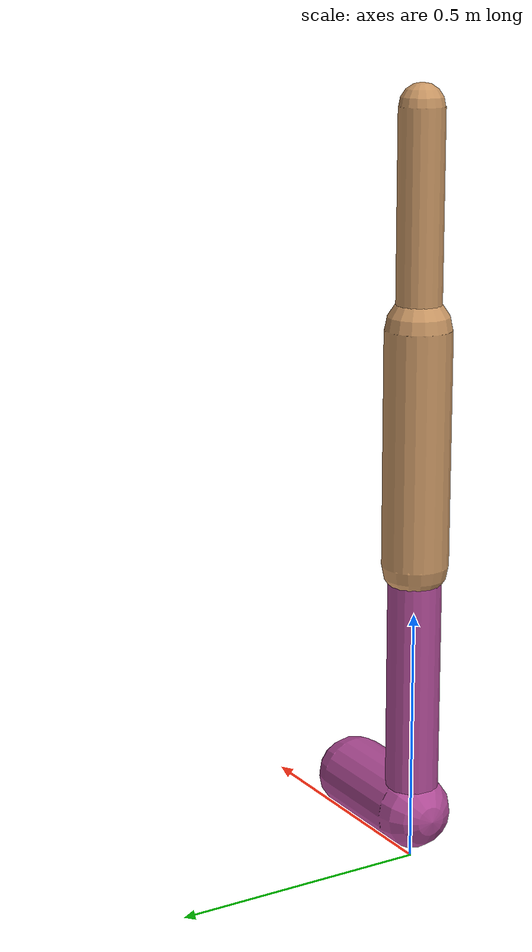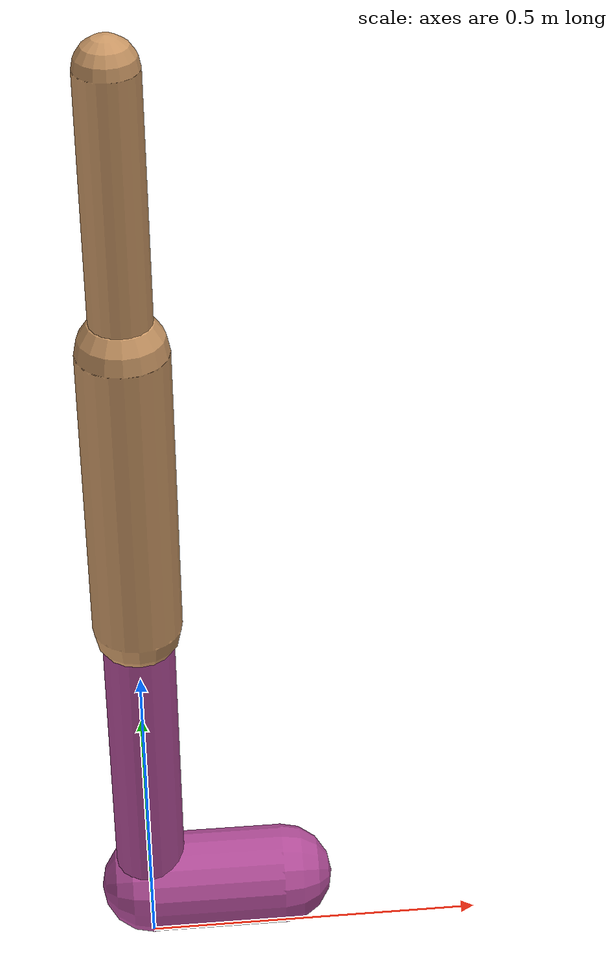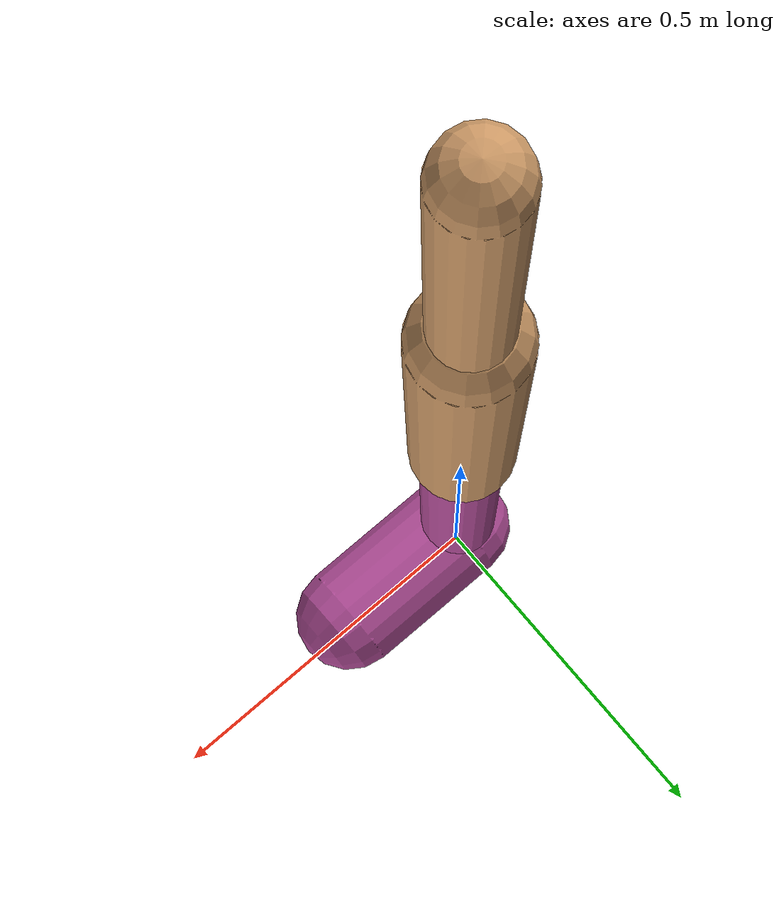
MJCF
<?xml version="1.0" encoding="utf-8"?>
<mujoco model="walker2d">
	<compiler angle="degree" coordinate="global" inertiafromgeom="true"></compiler>
	<default>
		<joint armature="0.01" damping="0.09266470118495478" limited="true"></joint>
		<geom conaffinity="0" condim="3" contype="1" density="1000" friction="0.6523466409067933 0.08171939019672142 0.12452887909894719" rgba="0.8 0.6 .4 1"></geom>
	</default>
	<option integrator="RK4" timestep="0.002"></option>
	<worldbody>
		<body name="torso">
			<joint armature="0" axis="1 0 0" damping="0.0" limited="false" name="ignorex" pos="0 0 0" stiffness="0.0" type="slide"></joint>
			<joint armature="0" axis="0 0 1" damping="0.0" limited="false" name="ignorez" pos="0 0 0" ref="1.25" stiffness="0.0" type="slide"></joint>
			<joint armature="0" axis="0 1 0" damping="0.0" limited="false" name="ignorey" pos="0 0 0" stiffness="0.0" type="hinge"></joint>
			<geom fromto="0 0 1.45 0 0 1.05" name="torso_geom" size="0.04280003531853493" type="capsule"></geom>
			<body name="thigh">
				<joint axis="0 -1 0" name="thigh_joint" pos="0 0 1.05" range="-150 0" type="hinge"></joint>
				<geom fromto="0 0 1.05 0 0 0.6" name="thigh_geom" size="0.06342423886140655" type="capsule"></geom>
				<body name="leg">
					<joint axis="0 -1 0" name="leg_joint" pos="0 0 0.6" range="-150 0" type="hinge"></joint>
					<geom fromto="0 0 0.6 0 0 0.1" name="leg_geom" size="0.04376762813665275" type="capsule"></geom>
					<body name="foot">
						<joint axis="0 -1 0" name="foot_joint" pos="0 0 0.1" range="-45 45" type="hinge"></joint>
						<geom fromto="-0.0 0 0.1 0.2 0 0.1" name="foot_geom" size="0.052312265823213806" type="capsule"></geom>
					</body>
				</body>
			</body>
			<body name="thigh_left">
				<joint axis="0 -1 0" name="thigh_left_joint" pos="0 0 1.05" range="-150 0" type="hinge"></joint>
				<geom fromto="0 0 1.05 0 0 0.6" name="thigh_left_geom" rgba=".7 .3 .6 1" size="0.0407357113411587" type="capsule"></geom>
				<body name="leg_left">
					<joint axis="0 -1 0" name="leg_left_joint" pos="0 0 0.6" range="-150 0" type="hinge"></joint>
					<geom fromto="0 0 0.6 0 0 0.1" name="leg_left_geom" rgba=".7 .3 .6 1" size="0.05111341405784661" type="capsule"></geom>
					<body name="foot_left">
						<joint axis="0 -1 0" name="foot_left_joint" pos="0 0 0.1" range="-45 45" type="hinge"></joint>
						<geom fromto="-0.0 0 0.1 0.2 0 0.1" name="foot_left_geom" rgba=".7 .3 .6 1" size="0.07530076932075122" type="capsule"></geom>
					</body>
				</body>
			</body>
		</body>
	</worldbody>
	<actuator>
		<motor ctrllimited="true" ctrlrange="-1.0 1.0" gear="100" joint="thigh_joint"></motor>
		<motor ctrllimited="true" ctrlrange="-1.0 1.0" gear="100" joint="leg_joint"></motor>
		<motor ctrllimited="true" ctrlrange="-1.0 1.0" gear="100" joint="foot_joint"></motor>
		<motor ctrllimited="true" ctrlrange="-1.0 1.0" gear="100" joint="thigh_left_joint"></motor>
		<motor ctrllimited="true" ctrlrange="-1.0 1.0" gear="100" joint="leg_left_joint"></motor>
		<motor ctrllimited="true" ctrlrange="-1.0 1.0" gear="100" joint="foot_left_joint"></motor>
	</actuator>
</mujoco>
